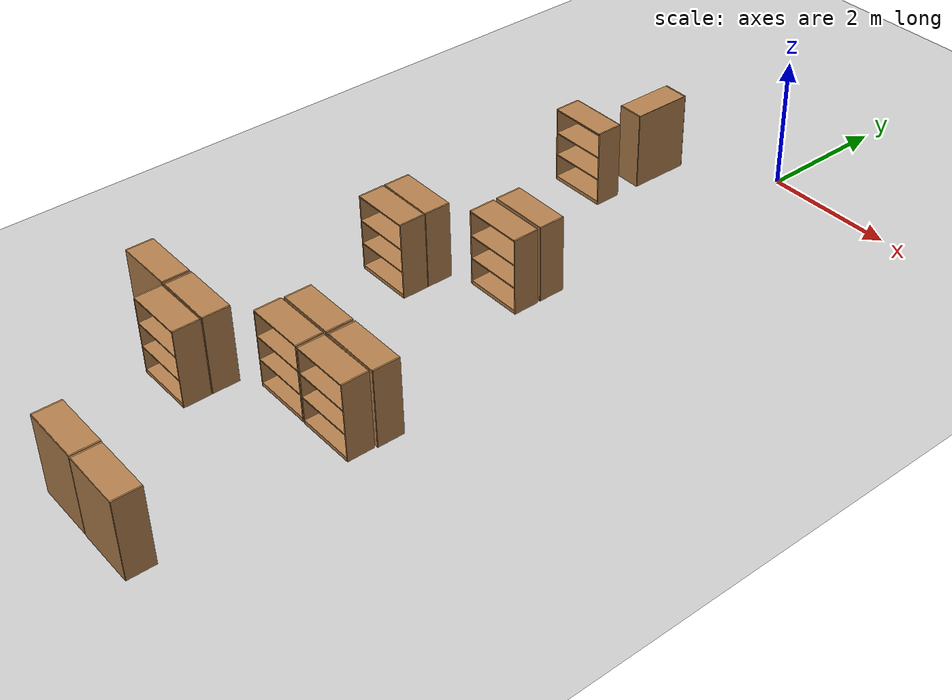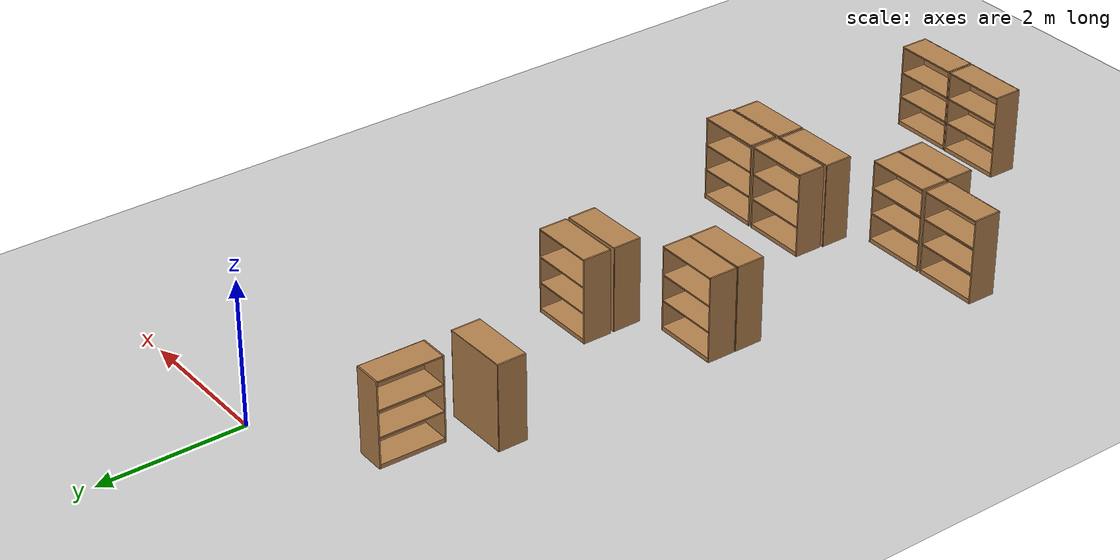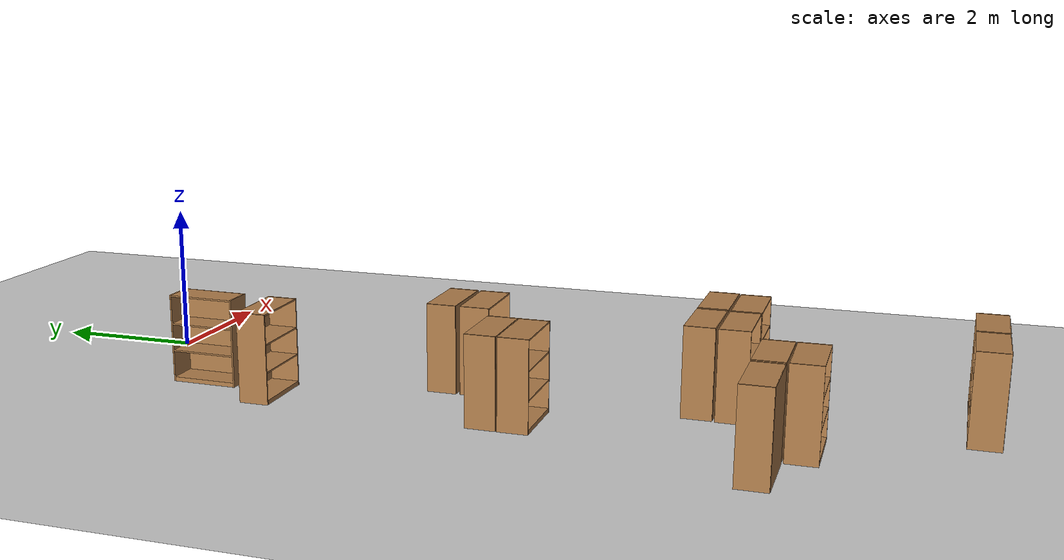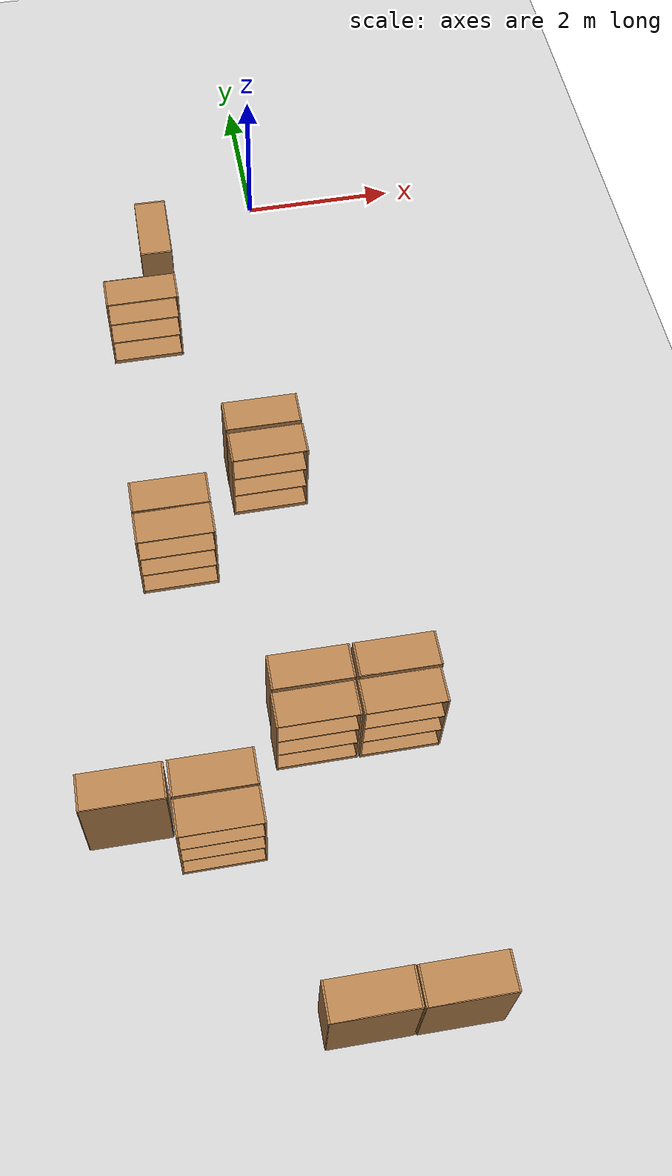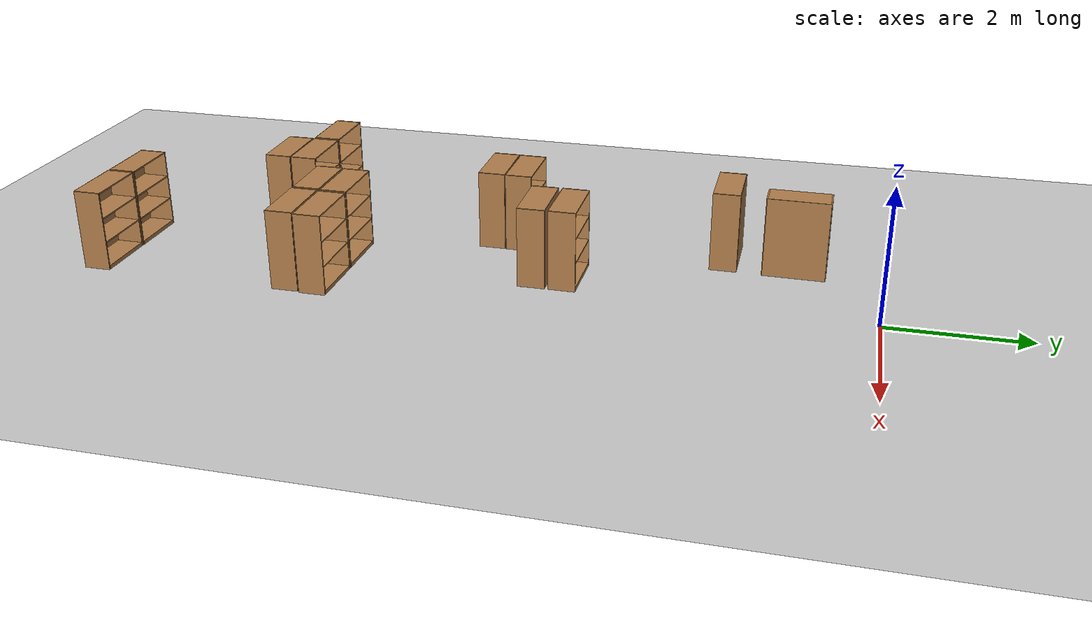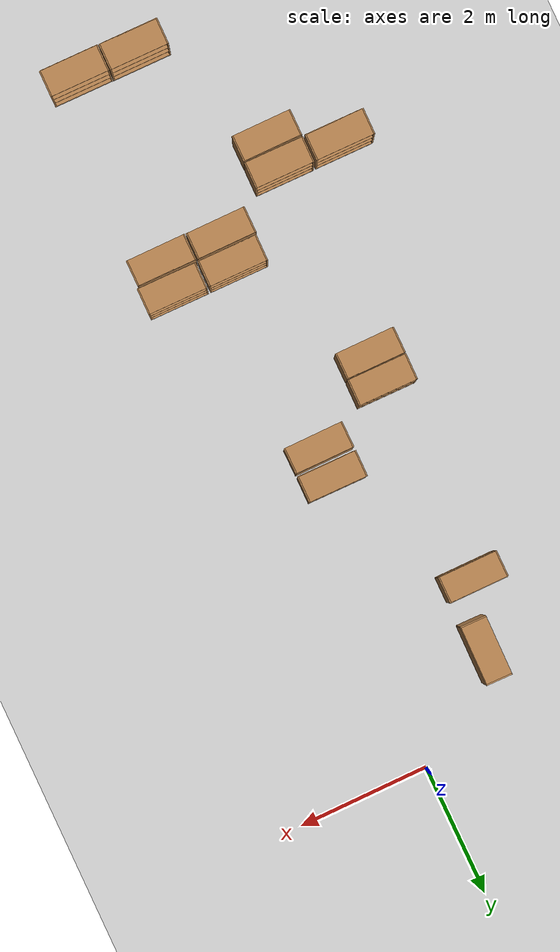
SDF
<sdf version="1.6">
 <world name="default">
  <model name="ground_plane">
   <static>1</static>
   <link name="link">
    <collision name="collision">
     <geometry><plane><normal>0 0 1</normal><size>100 100</size></plane></geometry>
     <surface>
      <contact><collide_bitmask>65535</collide_bitmask></contact>
      <friction><ode><mu>100</mu><mu2>50</mu2></ode></friction>
     </surface>
    </collision>
    <visual name="visual">
     <cast_shadows>0</cast_shadows>
     <geometry><plane><normal>0 0 1</normal><size>100 100</size></plane></geometry>
     <material>
      <script><uri>file://media/materials/scripts/gazebo.material</uri><name>Gazebo/Grey</name></script>
     </material>
    </visual>
   </link>
  </model>
  <model name="bookshelf_clone_6">
   <static>1</static>
   <link name="link">
    <inertial><mass>1</mass></inertial>
    <collision name="back">
     <pose>0 0.005 0.6 0 -0 0</pose>
     <geometry><box><size>0.9 0.01 1.2</size></box></geometry>
    </collision>
    <visual name="visual1">
     <pose>0 0.005 0.6 0 -0 0</pose>
     <geometry><box><size>0.9 0.01 1.2</size></box></geometry>
     <material>
      <script><uri>file://media/materials/scripts/gazebo.material</uri><name>Gazebo/Wood</name></script>
     </material>
    </visual>
    <collision name="left_side">
     <pose>0.45 -0.195 0.6 0 -0 0</pose>
     <geometry><box><size>0.02 0.4 1.2</size></box></geometry>
    </collision>
    <visual name="visual2">
     <pose>0.45 -0.195 0.6 0 -0 0</pose>
     <geometry><box><size>0.02 0.4 1.2</size></box></geometry>
     <material>
      <script><uri>file://media/materials/scripts/gazebo.material</uri><name>Gazebo/Wood</name></script>
     </material>
    </visual>
    <collision name="right_side">
     <pose>-0.45 -0.195 0.6 0 -0 0</pose>
     <geometry><box><size>0.02 0.4 1.2</size></box></geometry>
    </collision>
    <visual name="visual3">
     <pose>-0.45 -0.195 0.6 0 -0 0</pose>
     <geometry><box><size>0.02 0.4 1.2</size></box></geometry>
     <material>
      <script><uri>file://media/materials/scripts/gazebo.material</uri><name>Gazebo/Wood</name></script>
     </material>
    </visual>
    <collision name="bottom">
     <pose>0 -0.195 0.03 0 -0 0</pose>
     <geometry><box><size>0.88 0.4 0.06</size></box></geometry>
    </collision>
    <visual name="visual4">
     <pose>0 -0.195 0.03 0 -0 0</pose>
     <geometry><box><size>0.88 0.4 0.06</size></box></geometry>
     <material>
      <script><uri>file://media/materials/scripts/gazebo.material</uri><name>Gazebo/Wood</name></script>
     </material>
    </visual>
    <collision name="top">
     <pose>0 -0.195 1.19 0 -0 0</pose>
     <geometry><box><size>0.88 0.4 0.02</size></box></geometry>
    </collision>
    <visual name="visual5">
     <pose>0 -0.195 1.19 0 -0 0</pose>
     <geometry><box><size>0.88 0.4 0.02</size></box></geometry>
     <material>
      <script><uri>file://media/materials/scripts/gazebo.material</uri><name>Gazebo/Wood</name></script>
     </material>
    </visual>
    <collision name="low_shelf">
     <pose>0 -0.195 0.43 0 -0 0</pose>
     <geometry><box><size>0.88 0.4 0.02</size></box></geometry>
    </collision>
    <visual name="visual6">
     <pose>0 -0.195 0.43 0 -0 0</pose>
     <geometry><box><size>0.88 0.4 0.02</size></box></geometry>
     <material>
      <script><uri>file://media/materials/scripts/gazebo.material</uri><name>Gazebo/Wood</name></script>
     </material>
    </visual>
    <collision name="high_shelf">
     <pose>0 -0.195 0.8 0 -0 0</pose>
     <geometry><box><size>0.88 0.4 0.02</size></box></geometry>
    </collision>
    <visual name="visual7">
     <pose>0 -0.195 0.8 0 -0 0</pose>
     <geometry><box><size>0.88 0.4 0.02</size></box></geometry>
     <material>
      <script><uri>file://media/materials/scripts/gazebo.material</uri><name>Gazebo/Wood</name></script>
     </material>
    </visual>
   </link>
   <pose>-1.26926 -1.22797 0 0 0 -1.58271</pose>
  </model>
  <model name="bookshelf_clone_43">
   <static>1</static>
   <link name="link">
    <inertial><mass>1</mass></inertial>
    <collision name="back">
     <pose>0 0.005 0.6 0 -0 0</pose>
     <geometry><box><size>0.9 0.01 1.2</size></box></geometry>
    </collision>
    <visual name="visual1">
     <pose>0 0.005 0.6 0 -0 0</pose>
     <geometry><box><size>0.9 0.01 1.2</size></box></geometry>
     <material>
      <script><uri>file://media/materials/scripts/gazebo.material</uri><name>Gazebo/Wood</name></script>
     </material>
    </visual>
    <collision name="left_side">
     <pose>0.45 -0.195 0.6 0 -0 0</pose>
     <geometry><box><size>0.02 0.4 1.2</size></box></geometry>
    </collision>
    <visual name="visual2">
     <pose>0.45 -0.195 0.6 0 -0 0</pose>
     <geometry><box><size>0.02 0.4 1.2</size></box></geometry>
     <material>
      <script><uri>file://media/materials/scripts/gazebo.material</uri><name>Gazebo/Wood</name></script>
     </material>
    </visual>
    <collision name="right_side">
     <pose>-0.45 -0.195 0.6 0 -0 0</pose>
     <geometry><box><size>0.02 0.4 1.2</size></box></geometry>
    </collision>
    <visual name="visual3">
     <pose>-0.45 -0.195 0.6 0 -0 0</pose>
     <geometry><box><size>0.02 0.4 1.2</size></box></geometry>
     <material>
      <script><uri>file://media/materials/scripts/gazebo.material</uri><name>Gazebo/Wood</name></script>
     </material>
    </visual>
    <collision name="bottom">
     <pose>0 -0.195 0.03 0 -0 0</pose>
     <geometry><box><size>0.88 0.4 0.06</size></box></geometry>
    </collision>
    <visual name="visual4">
     <pose>0 -0.195 0.03 0 -0 0</pose>
     <geometry><box><size>0.88 0.4 0.06</size></box></geometry>
     <material>
      <script><uri>file://media/materials/scripts/gazebo.material</uri><name>Gazebo/Wood</name></script>
     </material>
    </visual>
    <collision name="top">
     <pose>0 -0.195 1.19 0 -0 0</pose>
     <geometry><box><size>0.88 0.4 0.02</size></box></geometry>
    </collision>
    <visual name="visual5">
     <pose>0 -0.195 1.19 0 -0 0</pose>
     <geometry><box><size>0.88 0.4 0.02</size></box></geometry>
     <material>
      <script><uri>file://media/materials/scripts/gazebo.material</uri><name>Gazebo/Wood</name></script>
     </material>
    </visual>
    <collision name="low_shelf">
     <pose>0 -0.195 0.43 0 -0 0</pose>
     <geometry><box><size>0.88 0.4 0.02</size></box></geometry>
    </collision>
    <visual name="visual6">
     <pose>0 -0.195 0.43 0 -0 0</pose>
     <geometry><box><size>0.88 0.4 0.02</size></box></geometry>
     <material>
      <script><uri>file://media/materials/scripts/gazebo.material</uri><name>Gazebo/Wood</name></script>
     </material>
    </visual>
    <collision name="high_shelf">
     <pose>0 -0.195 0.8 0 -0 0</pose>
     <geometry><box><size>0.88 0.4 0.02</size></box></geometry>
    </collision>
    <visual name="visual7">
     <pose>0 -0.195 0.8 0 -0 0</pose>
     <geometry><box><size>0.88 0.4 0.02</size></box></geometry>
     <material>
      <script><uri>file://media/materials/scripts/gazebo.material</uri><name>Gazebo/Wood</name></script>
     </material>
    </visual>
   </link>
   <pose>-0.528018 -4.65302 0 0 -0 0.005938</pose>
  </model>
  <model name="bookshelf_clone_49">
   <static>1</static>
   <link name="link">
    <inertial><mass>1</mass></inertial>
    <collision name="back">
     <pose>0 0.005 0.6 0 -0 0</pose>
     <geometry><box><size>0.9 0.01 1.2</size></box></geometry>
    </collision>
    <visual name="visual1">
     <pose>0 0.005 0.6 0 -0 0</pose>
     <geometry><box><size>0.9 0.01 1.2</size></box></geometry>
     <material>
      <script><uri>file://media/materials/scripts/gazebo.material</uri><name>Gazebo/Wood</name></script>
     </material>
    </visual>
    <collision name="left_side">
     <pose>0.45 -0.195 0.6 0 -0 0</pose>
     <geometry><box><size>0.02 0.4 1.2</size></box></geometry>
    </collision>
    <visual name="visual2">
     <pose>0.45 -0.195 0.6 0 -0 0</pose>
     <geometry><box><size>0.02 0.4 1.2</size></box></geometry>
     <material>
      <script><uri>file://media/materials/scripts/gazebo.material</uri><name>Gazebo/Wood</name></script>
     </material>
    </visual>
    <collision name="right_side">
     <pose>-0.45 -0.195 0.6 0 -0 0</pose>
     <geometry><box><size>0.02 0.4 1.2</size></box></geometry>
    </collision>
    <visual name="visual3">
     <pose>-0.45 -0.195 0.6 0 -0 0</pose>
     <geometry><box><size>0.02 0.4 1.2</size></box></geometry>
     <material>
      <script><uri>file://media/materials/scripts/gazebo.material</uri><name>Gazebo/Wood</name></script>
     </material>
    </visual>
    <collision name="bottom">
     <pose>0 -0.195 0.03 0 -0 0</pose>
     <geometry><box><size>0.88 0.4 0.06</size></box></geometry>
    </collision>
    <visual name="visual4">
     <pose>0 -0.195 0.03 0 -0 0</pose>
     <geometry><box><size>0.88 0.4 0.06</size></box></geometry>
     <material>
      <script><uri>file://media/materials/scripts/gazebo.material</uri><name>Gazebo/Wood</name></script>
     </material>
    </visual>
    <collision name="top">
     <pose>0 -0.195 1.19 0 -0 0</pose>
     <geometry><box><size>0.88 0.4 0.02</size></box></geometry>
    </collision>
    <visual name="visual5">
     <pose>0 -0.195 1.19 0 -0 0</pose>
     <geometry><box><size>0.88 0.4 0.02</size></box></geometry>
     <material>
      <script><uri>file://media/materials/scripts/gazebo.material</uri><name>Gazebo/Wood</name></script>
     </material>
    </visual>
    <collision name="low_shelf">
     <pose>0 -0.195 0.43 0 -0 0</pose>
     <geometry><box><size>0.88 0.4 0.02</size></box></geometry>
    </collision>
    <visual name="visual6">
     <pose>0 -0.195 0.43 0 -0 0</pose>
     <geometry><box><size>0.88 0.4 0.02</size></box></geometry>
     <material>
      <script><uri>file://media/materials/scripts/gazebo.material</uri><name>Gazebo/Wood</name></script>
     </material>
    </visual>
    <collision name="high_shelf">
     <pose>0 -0.195 0.8 0 -0 0</pose>
     <geometry><box><size>0.88 0.4 0.02</size></box></geometry>
    </collision>
    <visual name="visual7">
     <pose>0 -0.195 0.8 0 -0 0</pose>
     <geometry><box><size>0.88 0.4 0.02</size></box></geometry>
     <material>
      <script><uri>file://media/materials/scripts/gazebo.material</uri><name>Gazebo/Wood</name></script>
     </material>
    </visual>
   </link>
   <pose>-0.530375 -4.59037 0 0 -0 3.13561</pose>
  </model>
  <model name="bookshelf_clone_50">
   <static>1</static>
   <link name="link">
    <inertial><mass>1</mass></inertial>
    <collision name="back">
     <pose>0 0.005 0.6 0 -0 0</pose>
     <geometry><box><size>0.9 0.01 1.2</size></box></geometry>
    </collision>
    <visual name="visual1">
     <pose>0 0.005 0.6 0 -0 0</pose>
     <geometry><box><size>0.9 0.01 1.2</size></box></geometry>
     <material>
      <script><uri>file://media/materials/scripts/gazebo.material</uri><name>Gazebo/Wood</name></script>
     </material>
    </visual>
    <collision name="left_side">
     <pose>0.45 -0.195 0.6 0 -0 0</pose>
     <geometry><box><size>0.02 0.4 1.2</size></box></geometry>
    </collision>
    <visual name="visual2">
     <pose>0.45 -0.195 0.6 0 -0 0</pose>
     <geometry><box><size>0.02 0.4 1.2</size></box></geometry>
     <material>
      <script><uri>file://media/materials/scripts/gazebo.material</uri><name>Gazebo/Wood</name></script>
     </material>
    </visual>
    <collision name="right_side">
     <pose>-0.45 -0.195 0.6 0 -0 0</pose>
     <geometry><box><size>0.02 0.4 1.2</size></box></geometry>
    </collision>
    <visual name="visual3">
     <pose>-0.45 -0.195 0.6 0 -0 0</pose>
     <geometry><box><size>0.02 0.4 1.2</size></box></geometry>
     <material>
      <script><uri>file://media/materials/scripts/gazebo.material</uri><name>Gazebo/Wood</name></script>
     </material>
    </visual>
    <collision name="bottom">
     <pose>0 -0.195 0.03 0 -0 0</pose>
     <geometry><box><size>0.88 0.4 0.06</size></box></geometry>
    </collision>
    <visual name="visual4">
     <pose>0 -0.195 0.03 0 -0 0</pose>
     <geometry><box><size>0.88 0.4 0.06</size></box></geometry>
     <material>
      <script><uri>file://media/materials/scripts/gazebo.material</uri><name>Gazebo/Wood</name></script>
     </material>
    </visual>
    <collision name="top">
     <pose>0 -0.195 1.19 0 -0 0</pose>
     <geometry><box><size>0.88 0.4 0.02</size></box></geometry>
    </collision>
    <visual name="visual5">
     <pose>0 -0.195 1.19 0 -0 0</pose>
     <geometry><box><size>0.88 0.4 0.02</size></box></geometry>
     <material>
      <script><uri>file://media/materials/scripts/gazebo.material</uri><name>Gazebo/Wood</name></script>
     </material>
    </visual>
    <collision name="low_shelf">
     <pose>0 -0.195 0.43 0 -0 0</pose>
     <geometry><box><size>0.88 0.4 0.02</size></box></geometry>
    </collision>
    <visual name="visual6">
     <pose>0 -0.195 0.43 0 -0 0</pose>
     <geometry><box><size>0.88 0.4 0.02</size></box></geometry>
     <material>
      <script><uri>file://media/materials/scripts/gazebo.material</uri><name>Gazebo/Wood</name></script>
     </material>
    </visual>
    <collision name="high_shelf">
     <pose>0 -0.195 0.8 0 -0 0</pose>
     <geometry><box><size>0.88 0.4 0.02</size></box></geometry>
    </collision>
    <visual name="visual7">
     <pose>0 -0.195 0.8 0 -0 0</pose>
     <geometry><box><size>0.88 0.4 0.02</size></box></geometry>
     <material>
      <script><uri>file://media/materials/scripts/gazebo.material</uri><name>Gazebo/Wood</name></script>
     </material>
    </visual>
   </link>
   <pose>-0.542781 -7.98073 0 0 -0 3.13561</pose>
  </model>
  <model name="bookshelf_clone_51">
   <static>1</static>
   <link name="link">
    <inertial><mass>1</mass></inertial>
    <collision name="back">
     <pose>0 0.005 0.6 0 -0 0</pose>
     <geometry><box><size>0.9 0.01 1.2</size></box></geometry>
    </collision>
    <visual name="visual1">
     <pose>0 0.005 0.6 0 -0 0</pose>
     <geometry><box><size>0.9 0.01 1.2</size></box></geometry>
     <material>
      <script><uri>file://media/materials/scripts/gazebo.material</uri><name>Gazebo/Wood</name></script>
     </material>
    </visual>
    <collision name="left_side">
     <pose>0.45 -0.195 0.6 0 -0 0</pose>
     <geometry><box><size>0.02 0.4 1.2</size></box></geometry>
    </collision>
    <visual name="visual2">
     <pose>0.45 -0.195 0.6 0 -0 0</pose>
     <geometry><box><size>0.02 0.4 1.2</size></box></geometry>
     <material>
      <script><uri>file://media/materials/scripts/gazebo.material</uri><name>Gazebo/Wood</name></script>
     </material>
    </visual>
    <collision name="right_side">
     <pose>-0.45 -0.195 0.6 0 -0 0</pose>
     <geometry><box><size>0.02 0.4 1.2</size></box></geometry>
    </collision>
    <visual name="visual3">
     <pose>-0.45 -0.195 0.6 0 -0 0</pose>
     <geometry><box><size>0.02 0.4 1.2</size></box></geometry>
     <material>
      <script><uri>file://media/materials/scripts/gazebo.material</uri><name>Gazebo/Wood</name></script>
     </material>
    </visual>
    <collision name="bottom">
     <pose>0 -0.195 0.03 0 -0 0</pose>
     <geometry><box><size>0.88 0.4 0.06</size></box></geometry>
    </collision>
    <visual name="visual4">
     <pose>0 -0.195 0.03 0 -0 0</pose>
     <geometry><box><size>0.88 0.4 0.06</size></box></geometry>
     <material>
      <script><uri>file://media/materials/scripts/gazebo.material</uri><name>Gazebo/Wood</name></script>
     </material>
    </visual>
    <collision name="top">
     <pose>0 -0.195 1.19 0 -0 0</pose>
     <geometry><box><size>0.88 0.4 0.02</size></box></geometry>
    </collision>
    <visual name="visual5">
     <pose>0 -0.195 1.19 0 -0 0</pose>
     <geometry><box><size>0.88 0.4 0.02</size></box></geometry>
     <material>
      <script><uri>file://media/materials/scripts/gazebo.material</uri><name>Gazebo/Wood</name></script>
     </material>
    </visual>
    <collision name="low_shelf">
     <pose>0 -0.195 0.43 0 -0 0</pose>
     <geometry><box><size>0.88 0.4 0.02</size></box></geometry>
    </collision>
    <visual name="visual6">
     <pose>0 -0.195 0.43 0 -0 0</pose>
     <geometry><box><size>0.88 0.4 0.02</size></box></geometry>
     <material>
      <script><uri>file://media/materials/scripts/gazebo.material</uri><name>Gazebo/Wood</name></script>
     </material>
    </visual>
    <collision name="high_shelf">
     <pose>0 -0.195 0.8 0 -0 0</pose>
     <geometry><box><size>0.88 0.4 0.02</size></box></geometry>
    </collision>
    <visual name="visual7">
     <pose>0 -0.195 0.8 0 -0 0</pose>
     <geometry><box><size>0.88 0.4 0.02</size></box></geometry>
     <material>
      <script><uri>file://media/materials/scripts/gazebo.material</uri><name>Gazebo/Wood</name></script>
     </material>
    </visual>
   </link>
   <pose>0.40801 -7.98528 0 0 -0 3.13561</pose>
  </model>
  <model name="bookshelf_clone_56">
   <static>1</static>
   <link name="link">
    <inertial><mass>1</mass></inertial>
    <collision name="back">
     <pose>0 0.005 0.6 0 -0 0</pose>
     <geometry><box><size>0.9 0.01 1.2</size></box></geometry>
    </collision>
    <visual name="visual1">
     <pose>0 0.005 0.6 0 -0 0</pose>
     <geometry><box><size>0.9 0.01 1.2</size></box></geometry>
     <material>
      <script><uri>file://media/materials/scripts/gazebo.material</uri><name>Gazebo/Wood</name></script>
     </material>
    </visual>
    <collision name="left_side">
     <pose>0.45 -0.195 0.6 0 -0 0</pose>
     <geometry><box><size>0.02 0.4 1.2</size></box></geometry>
    </collision>
    <visual name="visual2">
     <pose>0.45 -0.195 0.6 0 -0 0</pose>
     <geometry><box><size>0.02 0.4 1.2</size></box></geometry>
     <material>
      <script><uri>file://media/materials/scripts/gazebo.material</uri><name>Gazebo/Wood</name></script>
     </material>
    </visual>
    <collision name="right_side">
     <pose>-0.45 -0.195 0.6 0 -0 0</pose>
     <geometry><box><size>0.02 0.4 1.2</size></box></geometry>
    </collision>
    <visual name="visual3">
     <pose>-0.45 -0.195 0.6 0 -0 0</pose>
     <geometry><box><size>0.02 0.4 1.2</size></box></geometry>
     <material>
      <script><uri>file://media/materials/scripts/gazebo.material</uri><name>Gazebo/Wood</name></script>
     </material>
    </visual>
    <collision name="bottom">
     <pose>0 -0.195 0.03 0 -0 0</pose>
     <geometry><box><size>0.88 0.4 0.06</size></box></geometry>
    </collision>
    <visual name="visual4">
     <pose>0 -0.195 0.03 0 -0 0</pose>
     <geometry><box><size>0.88 0.4 0.06</size></box></geometry>
     <material>
      <script><uri>file://media/materials/scripts/gazebo.material</uri><name>Gazebo/Wood</name></script>
     </material>
    </visual>
    <collision name="top">
     <pose>0 -0.195 1.19 0 -0 0</pose>
     <geometry><box><size>0.88 0.4 0.02</size></box></geometry>
    </collision>
    <visual name="visual5">
     <pose>0 -0.195 1.19 0 -0 0</pose>
     <geometry><box><size>0.88 0.4 0.02</size></box></geometry>
     <material>
      <script><uri>file://media/materials/scripts/gazebo.material</uri><name>Gazebo/Wood</name></script>
     </material>
    </visual>
    <collision name="low_shelf">
     <pose>0 -0.195 0.43 0 -0 0</pose>
     <geometry><box><size>0.88 0.4 0.02</size></box></geometry>
    </collision>
    <visual name="visual6">
     <pose>0 -0.195 0.43 0 -0 0</pose>
     <geometry><box><size>0.88 0.4 0.02</size></box></geometry>
     <material>
      <script><uri>file://media/materials/scripts/gazebo.material</uri><name>Gazebo/Wood</name></script>
     </material>
    </visual>
    <collision name="high_shelf">
     <pose>0 -0.195 0.8 0 -0 0</pose>
     <geometry><box><size>0.88 0.4 0.02</size></box></geometry>
    </collision>
    <visual name="visual7">
     <pose>0 -0.195 0.8 0 -0 0</pose>
     <geometry><box><size>0.88 0.4 0.02</size></box></geometry>
     <material>
      <script><uri>file://media/materials/scripts/gazebo.material</uri><name>Gazebo/Wood</name></script>
     </material>
    </visual>
   </link>
   <pose>-0.569408 -11.3883 0 0 -0 3.13561</pose>
  </model>
  <model name="bookshelf_clone_57">
   <static>1</static>
   <link name="link">
    <inertial><mass>1</mass></inertial>
    <collision name="back">
     <pose>0 0.005 0.6 0 -0 0</pose>
     <geometry><box><size>0.9 0.01 1.2</size></box></geometry>
    </collision>
    <visual name="visual1">
     <pose>0 0.005 0.6 0 -0 0</pose>
     <geometry><box><size>0.9 0.01 1.2</size></box></geometry>
     <material>
      <script><uri>file://media/materials/scripts/gazebo.material</uri><name>Gazebo/Wood</name></script>
     </material>
    </visual>
    <collision name="left_side">
     <pose>0.45 -0.195 0.6 0 -0 0</pose>
     <geometry><box><size>0.02 0.4 1.2</size></box></geometry>
    </collision>
    <visual name="visual2">
     <pose>0.45 -0.195 0.6 0 -0 0</pose>
     <geometry><box><size>0.02 0.4 1.2</size></box></geometry>
     <material>
      <script><uri>file://media/materials/scripts/gazebo.material</uri><name>Gazebo/Wood</name></script>
     </material>
    </visual>
    <collision name="right_side">
     <pose>-0.45 -0.195 0.6 0 -0 0</pose>
     <geometry><box><size>0.02 0.4 1.2</size></box></geometry>
    </collision>
    <visual name="visual3">
     <pose>-0.45 -0.195 0.6 0 -0 0</pose>
     <geometry><box><size>0.02 0.4 1.2</size></box></geometry>
     <material>
      <script><uri>file://media/materials/scripts/gazebo.material</uri><name>Gazebo/Wood</name></script>
     </material>
    </visual>
    <collision name="bottom">
     <pose>0 -0.195 0.03 0 -0 0</pose>
     <geometry><box><size>0.88 0.4 0.06</size></box></geometry>
    </collision>
    <visual name="visual4">
     <pose>0 -0.195 0.03 0 -0 0</pose>
     <geometry><box><size>0.88 0.4 0.06</size></box></geometry>
     <material>
      <script><uri>file://media/materials/scripts/gazebo.material</uri><name>Gazebo/Wood</name></script>
     </material>
    </visual>
    <collision name="top">
     <pose>0 -0.195 1.19 0 -0 0</pose>
     <geometry><box><size>0.88 0.4 0.02</size></box></geometry>
    </collision>
    <visual name="visual5">
     <pose>0 -0.195 1.19 0 -0 0</pose>
     <geometry><box><size>0.88 0.4 0.02</size></box></geometry>
     <material>
      <script><uri>file://media/materials/scripts/gazebo.material</uri><name>Gazebo/Wood</name></script>
     </material>
    </visual>
    <collision name="low_shelf">
     <pose>0 -0.195 0.43 0 -0 0</pose>
     <geometry><box><size>0.88 0.4 0.02</size></box></geometry>
    </collision>
    <visual name="visual6">
     <pose>0 -0.195 0.43 0 -0 0</pose>
     <geometry><box><size>0.88 0.4 0.02</size></box></geometry>
     <material>
      <script><uri>file://media/materials/scripts/gazebo.material</uri><name>Gazebo/Wood</name></script>
     </material>
    </visual>
    <collision name="high_shelf">
     <pose>0 -0.195 0.8 0 -0 0</pose>
     <geometry><box><size>0.88 0.4 0.02</size></box></geometry>
    </collision>
    <visual name="visual7">
     <pose>0 -0.195 0.8 0 -0 0</pose>
     <geometry><box><size>0.88 0.4 0.02</size></box></geometry>
     <material>
      <script><uri>file://media/materials/scripts/gazebo.material</uri><name>Gazebo/Wood</name></script>
     </material>
    </visual>
   </link>
   <pose>0.361588 -11.3985 0 0 -0 3.13561</pose>
  </model>
  <model name="bookshelf_clone_66">
   <static>1</static>
   <link name="link">
    <inertial><mass>1</mass></inertial>
    <collision name="back">
     <pose>0 0.005 0.6 0 -0 0</pose>
     <geometry><box><size>0.9 0.01 1.2</size></box></geometry>
    </collision>
    <visual name="visual1">
     <pose>0 0.005 0.6 0 -0 0</pose>
     <geometry><box><size>0.9 0.01 1.2</size></box></geometry>
     <material>
      <script><uri>file://media/materials/scripts/gazebo.material</uri><name>Gazebo/Wood</name></script>
     </material>
    </visual>
    <collision name="left_side">
     <pose>0.45 -0.195 0.6 0 -0 0</pose>
     <geometry><box><size>0.02 0.4 1.2</size></box></geometry>
    </collision>
    <visual name="visual2">
     <pose>0.45 -0.195 0.6 0 -0 0</pose>
     <geometry><box><size>0.02 0.4 1.2</size></box></geometry>
     <material>
      <script><uri>file://media/materials/scripts/gazebo.material</uri><name>Gazebo/Wood</name></script>
     </material>
    </visual>
    <collision name="right_side">
     <pose>-0.45 -0.195 0.6 0 -0 0</pose>
     <geometry><box><size>0.02 0.4 1.2</size></box></geometry>
    </collision>
    <visual name="visual3">
     <pose>-0.45 -0.195 0.6 0 -0 0</pose>
     <geometry><box><size>0.02 0.4 1.2</size></box></geometry>
     <material>
      <script><uri>file://media/materials/scripts/gazebo.material</uri><name>Gazebo/Wood</name></script>
     </material>
    </visual>
    <collision name="bottom">
     <pose>0 -0.195 0.03 0 -0 0</pose>
     <geometry><box><size>0.88 0.4 0.06</size></box></geometry>
    </collision>
    <visual name="visual4">
     <pose>0 -0.195 0.03 0 -0 0</pose>
     <geometry><box><size>0.88 0.4 0.06</size></box></geometry>
     <material>
      <script><uri>file://media/materials/scripts/gazebo.material</uri><name>Gazebo/Wood</name></script>
     </material>
    </visual>
    <collision name="top">
     <pose>0 -0.195 1.19 0 -0 0</pose>
     <geometry><box><size>0.88 0.4 0.02</size></box></geometry>
    </collision>
    <visual name="visual5">
     <pose>0 -0.195 1.19 0 -0 0</pose>
     <geometry><box><size>0.88 0.4 0.02</size></box></geometry>
     <material>
      <script><uri>file://media/materials/scripts/gazebo.material</uri><name>Gazebo/Wood</name></script>
     </material>
    </visual>
    <collision name="low_shelf">
     <pose>0 -0.195 0.43 0 -0 0</pose>
     <geometry><box><size>0.88 0.4 0.02</size></box></geometry>
    </collision>
    <visual name="visual6">
     <pose>0 -0.195 0.43 0 -0 0</pose>
     <geometry><box><size>0.88 0.4 0.02</size></box></geometry>
     <material>
      <script><uri>file://media/materials/scripts/gazebo.material</uri><name>Gazebo/Wood</name></script>
     </material>
    </visual>
    <collision name="high_shelf">
     <pose>0 -0.195 0.8 0 -0 0</pose>
     <geometry><box><size>0.88 0.4 0.02</size></box></geometry>
    </collision>
    <visual name="visual7">
     <pose>0 -0.195 0.8 0 -0 0</pose>
     <geometry><box><size>0.88 0.4 0.02</size></box></geometry>
     <material>
      <script><uri>file://media/materials/scripts/gazebo.material</uri><name>Gazebo/Wood</name></script>
     </material>
    </visual>
   </link>
   <pose>0.380598 -8.02826 0 0 -0 0.00089</pose>
  </model>
  <model name="bookshelf_clone_67">
   <static>1</static>
   <link name="link">
    <inertial><mass>1</mass></inertial>
    <collision name="back">
     <pose>0 0.005 0.6 0 -0 0</pose>
     <geometry><box><size>0.9 0.01 1.2</size></box></geometry>
    </collision>
    <visual name="visual1">
     <pose>0 0.005 0.6 0 -0 0</pose>
     <geometry><box><size>0.9 0.01 1.2</size></box></geometry>
     <material>
      <script><uri>file://media/materials/scripts/gazebo.material</uri><name>Gazebo/Wood</name></script>
     </material>
    </visual>
    <collision name="left_side">
     <pose>0.45 -0.195 0.6 0 -0 0</pose>
     <geometry><box><size>0.02 0.4 1.2</size></box></geometry>
    </collision>
    <visual name="visual2">
     <pose>0.45 -0.195 0.6 0 -0 0</pose>
     <geometry><box><size>0.02 0.4 1.2</size></box></geometry>
     <material>
      <script><uri>file://media/materials/scripts/gazebo.material</uri><name>Gazebo/Wood</name></script>
     </material>
    </visual>
    <collision name="right_side">
     <pose>-0.45 -0.195 0.6 0 -0 0</pose>
     <geometry><box><size>0.02 0.4 1.2</size></box></geometry>
    </collision>
    <visual name="visual3">
     <pose>-0.45 -0.195 0.6 0 -0 0</pose>
     <geometry><box><size>0.02 0.4 1.2</size></box></geometry>
     <material>
      <script><uri>file://media/materials/scripts/gazebo.material</uri><name>Gazebo/Wood</name></script>
     </material>
    </visual>
    <collision name="bottom">
     <pose>0 -0.195 0.03 0 -0 0</pose>
     <geometry><box><size>0.88 0.4 0.06</size></box></geometry>
    </collision>
    <visual name="visual4">
     <pose>0 -0.195 0.03 0 -0 0</pose>
     <geometry><box><size>0.88 0.4 0.06</size></box></geometry>
     <material>
      <script><uri>file://media/materials/scripts/gazebo.material</uri><name>Gazebo/Wood</name></script>
     </material>
    </visual>
    <collision name="top">
     <pose>0 -0.195 1.19 0 -0 0</pose>
     <geometry><box><size>0.88 0.4 0.02</size></box></geometry>
    </collision>
    <visual name="visual5">
     <pose>0 -0.195 1.19 0 -0 0</pose>
     <geometry><box><size>0.88 0.4 0.02</size></box></geometry>
     <material>
      <script><uri>file://media/materials/scripts/gazebo.material</uri><name>Gazebo/Wood</name></script>
     </material>
    </visual>
    <collision name="low_shelf">
     <pose>0 -0.195 0.43 0 -0 0</pose>
     <geometry><box><size>0.88 0.4 0.02</size></box></geometry>
    </collision>
    <visual name="visual6">
     <pose>0 -0.195 0.43 0 -0 0</pose>
     <geometry><box><size>0.88 0.4 0.02</size></box></geometry>
     <material>
      <script><uri>file://media/materials/scripts/gazebo.material</uri><name>Gazebo/Wood</name></script>
     </material>
    </visual>
    <collision name="high_shelf">
     <pose>0 -0.195 0.8 0 -0 0</pose>
     <geometry><box><size>0.88 0.4 0.02</size></box></geometry>
    </collision>
    <visual name="visual7">
     <pose>0 -0.195 0.8 0 -0 0</pose>
     <geometry><box><size>0.88 0.4 0.02</size></box></geometry>
     <material>
      <script><uri>file://media/materials/scripts/gazebo.material</uri><name>Gazebo/Wood</name></script>
     </material>
    </visual>
   </link>
   <pose>-0.559644 -8.02284 0 0 -0 0.00089</pose>
  </model>
  <model name="bookshelf_clone_68">
   <static>1</static>
   <link name="link">
    <inertial><mass>1</mass></inertial>
    <collision name="back">
     <pose>0 0.005 0.6 0 -0 0</pose>
     <geometry><box><size>0.9 0.01 1.2</size></box></geometry>
    </collision>
    <visual name="visual1">
     <pose>0 0.005 0.6 0 -0 0</pose>
     <geometry><box><size>0.9 0.01 1.2</size></box></geometry>
     <material>
      <script><uri>file://media/materials/scripts/gazebo.material</uri><name>Gazebo/Wood</name></script>
     </material>
    </visual>
    <collision name="left_side">
     <pose>0.45 -0.195 0.6 0 -0 0</pose>
     <geometry><box><size>0.02 0.4 1.2</size></box></geometry>
    </collision>
    <visual name="visual2">
     <pose>0.45 -0.195 0.6 0 -0 0</pose>
     <geometry><box><size>0.02 0.4 1.2</size></box></geometry>
     <material>
      <script><uri>file://media/materials/scripts/gazebo.material</uri><name>Gazebo/Wood</name></script>
     </material>
    </visual>
    <collision name="right_side">
     <pose>-0.45 -0.195 0.6 0 -0 0</pose>
     <geometry><box><size>0.02 0.4 1.2</size></box></geometry>
    </collision>
    <visual name="visual3">
     <pose>-0.45 -0.195 0.6 0 -0 0</pose>
     <geometry><box><size>0.02 0.4 1.2</size></box></geometry>
     <material>
      <script><uri>file://media/materials/scripts/gazebo.material</uri><name>Gazebo/Wood</name></script>
     </material>
    </visual>
    <collision name="bottom">
     <pose>0 -0.195 0.03 0 -0 0</pose>
     <geometry><box><size>0.88 0.4 0.06</size></box></geometry>
    </collision>
    <visual name="visual4">
     <pose>0 -0.195 0.03 0 -0 0</pose>
     <geometry><box><size>0.88 0.4 0.06</size></box></geometry>
     <material>
      <script><uri>file://media/materials/scripts/gazebo.material</uri><name>Gazebo/Wood</name></script>
     </material>
    </visual>
    <collision name="top">
     <pose>0 -0.195 1.19 0 -0 0</pose>
     <geometry><box><size>0.88 0.4 0.02</size></box></geometry>
    </collision>
    <visual name="visual5">
     <pose>0 -0.195 1.19 0 -0 0</pose>
     <geometry><box><size>0.88 0.4 0.02</size></box></geometry>
     <material>
      <script><uri>file://media/materials/scripts/gazebo.material</uri><name>Gazebo/Wood</name></script>
     </material>
    </visual>
    <collision name="low_shelf">
     <pose>0 -0.195 0.43 0 -0 0</pose>
     <geometry><box><size>0.88 0.4 0.02</size></box></geometry>
    </collision>
    <visual name="visual6">
     <pose>0 -0.195 0.43 0 -0 0</pose>
     <geometry><box><size>0.88 0.4 0.02</size></box></geometry>
     <material>
      <script><uri>file://media/materials/scripts/gazebo.material</uri><name>Gazebo/Wood</name></script>
     </material>
    </visual>
    <collision name="high_shelf">
     <pose>0 -0.195 0.8 0 -0 0</pose>
     <geometry><box><size>0.88 0.4 0.02</size></box></geometry>
    </collision>
    <visual name="visual7">
     <pose>0 -0.195 0.8 0 -0 0</pose>
     <geometry><box><size>0.88 0.4 0.02</size></box></geometry>
     <material>
      <script><uri>file://media/materials/scripts/gazebo.material</uri><name>Gazebo/Wood</name></script>
     </material>
    </visual>
   </link>
   <pose>-1.74149 -2.05652 0 0 -0 0.00089</pose>
  </model>
  <model name="bookshelf_clone_74">
   <static>1</static>
   <link name="link">
    <inertial><mass>1</mass></inertial>
    <collision name="back">
     <pose>0 0.005 0.6 0 -0 0</pose>
     <geometry><box><size>0.9 0.01 1.2</size></box></geometry>
    </collision>
    <visual name="visual1">
     <pose>0 0.005 0.6 0 -0 0</pose>
     <geometry><box><size>0.9 0.01 1.2</size></box></geometry>
     <material>
      <script><uri>file://media/materials/scripts/gazebo.material</uri><name>Gazebo/Wood</name></script>
     </material>
    </visual>
    <collision name="left_side">
     <pose>0.45 -0.195 0.6 0 -0 0</pose>
     <geometry><box><size>0.02 0.4 1.2</size></box></geometry>
    </collision>
    <visual name="visual2">
     <pose>0.45 -0.195 0.6 0 -0 0</pose>
     <geometry><box><size>0.02 0.4 1.2</size></box></geometry>
     <material>
      <script><uri>file://media/materials/scripts/gazebo.material</uri><name>Gazebo/Wood</name></script>
     </material>
    </visual>
    <collision name="right_side">
     <pose>-0.45 -0.195 0.6 0 -0 0</pose>
     <geometry><box><size>0.02 0.4 1.2</size></box></geometry>
    </collision>
    <visual name="visual3">
     <pose>-0.45 -0.195 0.6 0 -0 0</pose>
     <geometry><box><size>0.02 0.4 1.2</size></box></geometry>
     <material>
      <script><uri>file://media/materials/scripts/gazebo.material</uri><name>Gazebo/Wood</name></script>
     </material>
    </visual>
    <collision name="bottom">
     <pose>0 -0.195 0.03 0 -0 0</pose>
     <geometry><box><size>0.88 0.4 0.06</size></box></geometry>
    </collision>
    <visual name="visual4">
     <pose>0 -0.195 0.03 0 -0 0</pose>
     <geometry><box><size>0.88 0.4 0.06</size></box></geometry>
     <material>
      <script><uri>file://media/materials/scripts/gazebo.material</uri><name>Gazebo/Wood</name></script>
     </material>
    </visual>
    <collision name="top">
     <pose>0 -0.195 1.19 0 -0 0</pose>
     <geometry><box><size>0.88 0.4 0.02</size></box></geometry>
    </collision>
    <visual name="visual5">
     <pose>0 -0.195 1.19 0 -0 0</pose>
     <geometry><box><size>0.88 0.4 0.02</size></box></geometry>
     <material>
      <script><uri>file://media/materials/scripts/gazebo.material</uri><name>Gazebo/Wood</name></script>
     </material>
    </visual>
    <collision name="low_shelf">
     <pose>0 -0.195 0.43 0 -0 0</pose>
     <geometry><box><size>0.88 0.4 0.02</size></box></geometry>
    </collision>
    <visual name="visual6">
     <pose>0 -0.195 0.43 0 -0 0</pose>
     <geometry><box><size>0.88 0.4 0.02</size></box></geometry>
     <material>
      <script><uri>file://media/materials/scripts/gazebo.material</uri><name>Gazebo/Wood</name></script>
     </material>
    </visual>
    <collision name="high_shelf">
     <pose>0 -0.195 0.8 0 -0 0</pose>
     <geometry><box><size>0.88 0.4 0.02</size></box></geometry>
    </collision>
    <visual name="visual7">
     <pose>0 -0.195 0.8 0 -0 0</pose>
     <geometry><box><size>0.88 0.4 0.02</size></box></geometry>
     <material>
      <script><uri>file://media/materials/scripts/gazebo.material</uri><name>Gazebo/Wood</name></script>
     </material>
    </visual>
   </link>
   <pose>-1.76303 -5.56754 0 0 -0 0.00089</pose>
  </model>
  <model name="bookshelf_clone_80">
   <static>1</static>
   <link name="link">
    <inertial><mass>1</mass></inertial>
    <collision name="back">
     <pose>0 0.005 0.6 0 -0 0</pose>
     <geometry><box><size>0.9 0.01 1.2</size></box></geometry>
    </collision>
    <visual name="visual1">
     <pose>0 0.005 0.6 0 -0 0</pose>
     <geometry><box><size>0.9 0.01 1.2</size></box></geometry>
     <material>
      <script><uri>file://media/materials/scripts/gazebo.material</uri><name>Gazebo/Wood</name></script>
     </material>
    </visual>
    <collision name="left_side">
     <pose>0.45 -0.195 0.6 0 -0 0</pose>
     <geometry><box><size>0.02 0.4 1.2</size></box></geometry>
    </collision>
    <visual name="visual2">
     <pose>0.45 -0.195 0.6 0 -0 0</pose>
     <geometry><box><size>0.02 0.4 1.2</size></box></geometry>
     <material>
      <script><uri>file://media/materials/scripts/gazebo.material</uri><name>Gazebo/Wood</name></script>
     </material>
    </visual>
    <collision name="right_side">
     <pose>-0.45 -0.195 0.6 0 -0 0</pose>
     <geometry><box><size>0.02 0.4 1.2</size></box></geometry>
    </collision>
    <visual name="visual3">
     <pose>-0.45 -0.195 0.6 0 -0 0</pose>
     <geometry><box><size>0.02 0.4 1.2</size></box></geometry>
     <material>
      <script><uri>file://media/materials/scripts/gazebo.material</uri><name>Gazebo/Wood</name></script>
     </material>
    </visual>
    <collision name="bottom">
     <pose>0 -0.195 0.03 0 -0 0</pose>
     <geometry><box><size>0.88 0.4 0.06</size></box></geometry>
    </collision>
    <visual name="visual4">
     <pose>0 -0.195 0.03 0 -0 0</pose>
     <geometry><box><size>0.88 0.4 0.06</size></box></geometry>
     <material>
      <script><uri>file://media/materials/scripts/gazebo.material</uri><name>Gazebo/Wood</name></script>
     </material>
    </visual>
    <collision name="top">
     <pose>0 -0.195 1.19 0 -0 0</pose>
     <geometry><box><size>0.88 0.4 0.02</size></box></geometry>
    </collision>
    <visual name="visual5">
     <pose>0 -0.195 1.19 0 -0 0</pose>
     <geometry><box><size>0.88 0.4 0.02</size></box></geometry>
     <material>
      <script><uri>file://media/materials/scripts/gazebo.material</uri><name>Gazebo/Wood</name></script>
     </material>
    </visual>
    <collision name="low_shelf">
     <pose>0 -0.195 0.43 0 -0 0</pose>
     <geometry><box><size>0.88 0.4 0.02</size></box></geometry>
    </collision>
    <visual name="visual6">
     <pose>0 -0.195 0.43 0 -0 0</pose>
     <geometry><box><size>0.88 0.4 0.02</size></box></geometry>
     <material>
      <script><uri>file://media/materials/scripts/gazebo.material</uri><name>Gazebo/Wood</name></script>
     </material>
    </visual>
    <collision name="high_shelf">
     <pose>0 -0.195 0.8 0 -0 0</pose>
     <geometry><box><size>0.88 0.4 0.02</size></box></geometry>
    </collision>
    <visual name="visual7">
     <pose>0 -0.195 0.8 0 -0 0</pose>
     <geometry><box><size>0.88 0.4 0.02</size></box></geometry>
     <material>
      <script><uri>file://media/materials/scripts/gazebo.material</uri><name>Gazebo/Wood</name></script>
     </material>
    </visual>
   </link>
   <pose>-1.73933 -9.00812 0 0 -0 0.00089</pose>
  </model>
  <model name="bookshelf_clone_86">
   <static>1</static>
   <link name="link">
    <inertial><mass>1</mass></inertial>
    <collision name="back">
     <pose>0 0.005 0.6 0 -0 0</pose>
     <geometry><box><size>0.9 0.01 1.2</size></box></geometry>
    </collision>
    <visual name="visual1">
     <pose>0 0.005 0.6 0 -0 0</pose>
     <geometry><box><size>0.9 0.01 1.2</size></box></geometry>
     <material>
      <script><uri>file://media/materials/scripts/gazebo.material</uri><name>Gazebo/Wood</name></script>
     </material>
    </visual>
    <collision name="left_side">
     <pose>0.45 -0.195 0.6 0 -0 0</pose>
     <geometry><box><size>0.02 0.4 1.2</size></box></geometry>
    </collision>
    <visual name="visual2">
     <pose>0.45 -0.195 0.6 0 -0 0</pose>
     <geometry><box><size>0.02 0.4 1.2</size></box></geometry>
     <material>
      <script><uri>file://media/materials/scripts/gazebo.material</uri><name>Gazebo/Wood</name></script>
     </material>
    </visual>
    <collision name="right_side">
     <pose>-0.45 -0.195 0.6 0 -0 0</pose>
     <geometry><box><size>0.02 0.4 1.2</size></box></geometry>
    </collision>
    <visual name="visual3">
     <pose>-0.45 -0.195 0.6 0 -0 0</pose>
     <geometry><box><size>0.02 0.4 1.2</size></box></geometry>
     <material>
      <script><uri>file://media/materials/scripts/gazebo.material</uri><name>Gazebo/Wood</name></script>
     </material>
    </visual>
    <collision name="bottom">
     <pose>0 -0.195 0.03 0 -0 0</pose>
     <geometry><box><size>0.88 0.4 0.06</size></box></geometry>
    </collision>
    <visual name="visual4">
     <pose>0 -0.195 0.03 0 -0 0</pose>
     <geometry><box><size>0.88 0.4 0.06</size></box></geometry>
     <material>
      <script><uri>file://media/materials/scripts/gazebo.material</uri><name>Gazebo/Wood</name></script>
     </material>
    </visual>
    <collision name="top">
     <pose>0 -0.195 1.19 0 -0 0</pose>
     <geometry><box><size>0.88 0.4 0.02</size></box></geometry>
    </collision>
    <visual name="visual5">
     <pose>0 -0.195 1.19 0 -0 0</pose>
     <geometry><box><size>0.88 0.4 0.02</size></box></geometry>
     <material>
      <script><uri>file://media/materials/scripts/gazebo.material</uri><name>Gazebo/Wood</name></script>
     </material>
    </visual>
    <collision name="low_shelf">
     <pose>0 -0.195 0.43 0 -0 0</pose>
     <geometry><box><size>0.88 0.4 0.02</size></box></geometry>
    </collision>
    <visual name="visual6">
     <pose>0 -0.195 0.43 0 -0 0</pose>
     <geometry><box><size>0.88 0.4 0.02</size></box></geometry>
     <material>
      <script><uri>file://media/materials/scripts/gazebo.material</uri><name>Gazebo/Wood</name></script>
     </material>
    </visual>
    <collision name="high_shelf">
     <pose>0 -0.195 0.8 0 -0 0</pose>
     <geometry><box><size>0.88 0.4 0.02</size></box></geometry>
    </collision>
    <visual name="visual7">
     <pose>0 -0.195 0.8 0 -0 0</pose>
     <geometry><box><size>0.88 0.4 0.02</size></box></geometry>
     <material>
      <script><uri>file://media/materials/scripts/gazebo.material</uri><name>Gazebo/Wood</name></script>
     </material>
    </visual>
   </link>
   <pose>-1.76148 -5.53916 0 0 -0 3.1353</pose>
  </model>
  <model name="bookshelf_clone_92">
   <static>1</static>
   <link name="link">
    <inertial><mass>1</mass></inertial>
    <collision name="back">
     <pose>0 0.005 0.6 0 -0 0</pose>
     <geometry><box><size>0.9 0.01 1.2</size></box></geometry>
    </collision>
    <visual name="visual1">
     <pose>0 0.005 0.6 0 -0 0</pose>
     <geometry><box><size>0.9 0.01 1.2</size></box></geometry>
     <material>
      <script><uri>file://media/materials/scripts/gazebo.material</uri><name>Gazebo/Wood</name></script>
     </material>
    </visual>
    <collision name="left_side">
     <pose>0.45 -0.195 0.6 0 -0 0</pose>
     <geometry><box><size>0.02 0.4 1.2</size></box></geometry>
    </collision>
    <visual name="visual2">
     <pose>0.45 -0.195 0.6 0 -0 0</pose>
     <geometry><box><size>0.02 0.4 1.2</size></box></geometry>
     <material>
      <script><uri>file://media/materials/scripts/gazebo.material</uri><name>Gazebo/Wood</name></script>
     </material>
    </visual>
    <collision name="right_side">
     <pose>-0.45 -0.195 0.6 0 -0 0</pose>
     <geometry><box><size>0.02 0.4 1.2</size></box></geometry>
    </collision>
    <visual name="visual3">
     <pose>-0.45 -0.195 0.6 0 -0 0</pose>
     <geometry><box><size>0.02 0.4 1.2</size></box></geometry>
     <material>
      <script><uri>file://media/materials/scripts/gazebo.material</uri><name>Gazebo/Wood</name></script>
     </material>
    </visual>
    <collision name="bottom">
     <pose>0 -0.195 0.03 0 -0 0</pose>
     <geometry><box><size>0.88 0.4 0.06</size></box></geometry>
    </collision>
    <visual name="visual4">
     <pose>0 -0.195 0.03 0 -0 0</pose>
     <geometry><box><size>0.88 0.4 0.06</size></box></geometry>
     <material>
      <script><uri>file://media/materials/scripts/gazebo.material</uri><name>Gazebo/Wood</name></script>
     </material>
    </visual>
    <collision name="top">
     <pose>0 -0.195 1.19 0 -0 0</pose>
     <geometry><box><size>0.88 0.4 0.02</size></box></geometry>
    </collision>
    <visual name="visual5">
     <pose>0 -0.195 1.19 0 -0 0</pose>
     <geometry><box><size>0.88 0.4 0.02</size></box></geometry>
     <material>
      <script><uri>file://media/materials/scripts/gazebo.material</uri><name>Gazebo/Wood</name></script>
     </material>
    </visual>
    <collision name="low_shelf">
     <pose>0 -0.195 0.43 0 -0 0</pose>
     <geometry><box><size>0.88 0.4 0.02</size></box></geometry>
    </collision>
    <visual name="visual6">
     <pose>0 -0.195 0.43 0 -0 0</pose>
     <geometry><box><size>0.88 0.4 0.02</size></box></geometry>
     <material>
      <script><uri>file://media/materials/scripts/gazebo.material</uri><name>Gazebo/Wood</name></script>
     </material>
    </visual>
    <collision name="high_shelf">
     <pose>0 -0.195 0.8 0 -0 0</pose>
     <geometry><box><size>0.88 0.4 0.02</size></box></geometry>
    </collision>
    <visual name="visual7">
     <pose>0 -0.195 0.8 0 -0 0</pose>
     <geometry><box><size>0.88 0.4 0.02</size></box></geometry>
     <material>
      <script><uri>file://media/materials/scripts/gazebo.material</uri><name>Gazebo/Wood</name></script>
     </material>
    </visual>
   </link>
   <pose>-1.74035 -8.97336 0 0 -0 3.1353</pose>
  </model>
  <model name="bookshelf_clone_93">
   <static>1</static>
   <link name="link">
    <inertial><mass>1</mass></inertial>
    <collision name="back">
     <pose>0 0.005 0.6 0 -0 0</pose>
     <geometry><box><size>0.9 0.01 1.2</size></box></geometry>
    </collision>
    <visual name="visual1">
     <pose>0 0.005 0.6 0 -0 0</pose>
     <geometry><box><size>0.9 0.01 1.2</size></box></geometry>
     <material>
      <script><uri>file://media/materials/scripts/gazebo.material</uri><name>Gazebo/Wood</name></script>
     </material>
    </visual>
    <collision name="left_side">
     <pose>0.45 -0.195 0.6 0 -0 0</pose>
     <geometry><box><size>0.02 0.4 1.2</size></box></geometry>
    </collision>
    <visual name="visual2">
     <pose>0.45 -0.195 0.6 0 -0 0</pose>
     <geometry><box><size>0.02 0.4 1.2</size></box></geometry>
     <material>
      <script><uri>file://media/materials/scripts/gazebo.material</uri><name>Gazebo/Wood</name></script>
     </material>
    </visual>
    <collision name="right_side">
     <pose>-0.45 -0.195 0.6 0 -0 0</pose>
     <geometry><box><size>0.02 0.4 1.2</size></box></geometry>
    </collision>
    <visual name="visual3">
     <pose>-0.45 -0.195 0.6 0 -0 0</pose>
     <geometry><box><size>0.02 0.4 1.2</size></box></geometry>
     <material>
      <script><uri>file://media/materials/scripts/gazebo.material</uri><name>Gazebo/Wood</name></script>
     </material>
    </visual>
    <collision name="bottom">
     <pose>0 -0.195 0.03 0 -0 0</pose>
     <geometry><box><size>0.88 0.4 0.06</size></box></geometry>
    </collision>
    <visual name="visual4">
     <pose>0 -0.195 0.03 0 -0 0</pose>
     <geometry><box><size>0.88 0.4 0.06</size></box></geometry>
     <material>
      <script><uri>file://media/materials/scripts/gazebo.material</uri><name>Gazebo/Wood</name></script>
     </material>
    </visual>
    <collision name="top">
     <pose>0 -0.195 1.19 0 -0 0</pose>
     <geometry><box><size>0.88 0.4 0.02</size></box></geometry>
    </collision>
    <visual name="visual5">
     <pose>0 -0.195 1.19 0 -0 0</pose>
     <geometry><box><size>0.88 0.4 0.02</size></box></geometry>
     <material>
      <script><uri>file://media/materials/scripts/gazebo.material</uri><name>Gazebo/Wood</name></script>
     </material>
    </visual>
    <collision name="low_shelf">
     <pose>0 -0.195 0.43 0 -0 0</pose>
     <geometry><box><size>0.88 0.4 0.02</size></box></geometry>
    </collision>
    <visual name="visual6">
     <pose>0 -0.195 0.43 0 -0 0</pose>
     <geometry><box><size>0.88 0.4 0.02</size></box></geometry>
     <material>
      <script><uri>file://media/materials/scripts/gazebo.material</uri><name>Gazebo/Wood</name></script>
     </material>
    </visual>
    <collision name="high_shelf">
     <pose>0 -0.195 0.8 0 -0 0</pose>
     <geometry><box><size>0.88 0.4 0.02</size></box></geometry>
    </collision>
    <visual name="visual7">
     <pose>0 -0.195 0.8 0 -0 0</pose>
     <geometry><box><size>0.88 0.4 0.02</size></box></geometry>
     <material>
      <script><uri>file://media/materials/scripts/gazebo.material</uri><name>Gazebo/Wood</name></script>
     </material>
    </visual>
   </link>
   <pose>-2.69353 -8.97116 0 0 -0 3.1353</pose>
  </model>
 </world>
</sdf>
